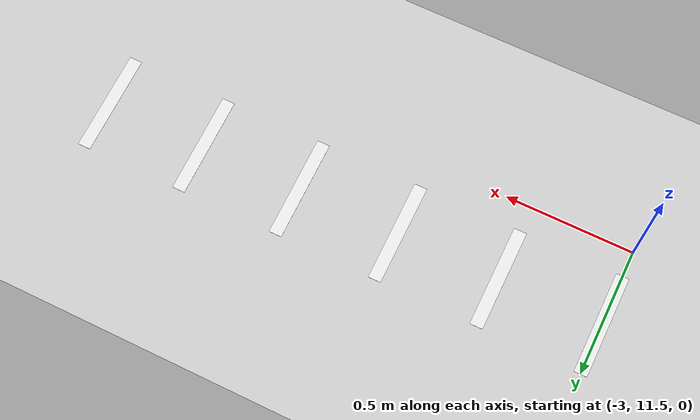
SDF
<sdf version="1.6">
 <world name="default">
  <model name="ground_plane">
   <static>1</static>
   <link name="link">
    <collision name="collision">
     <geometry><plane><normal>0 0 1</normal><size>100 100</size></plane></geometry>
     <surface><friction><ode><mu>100</mu><mu2>50</mu2></ode></friction></surface>
    </collision>
    <visual name="visual">
     <cast_shadows>0</cast_shadows>
     <geometry><plane><normal>0 0 1</normal><size>100 100</size></plane></geometry>
     <material>
      <script><uri>file://media/materials/scripts/gazebo.material</uri><name>Gazebo/Grey</name></script>
     </material>
    </visual>
   </link>
  </model>
  <model name="zebra_crossing_40cmx200cm_0">
   <link name="link_2">
    <inertial>
     <mass>1</mass>
     <inertia>
      <ixx>0.166667</ixx>
      <ixy>0</ixy>
      <ixz>0</ixz>
      <iyy>0.166667</iyy>
      <iyz>0</iyz>
      <izz>0.166667</izz>
     </inertia>
    </inertial>
    <visual name="ModelPreview_5::link_2::visual_1">
     <pose>-0.2 0 0 0 -0 0</pose>
     <geometry><box><size>0.05 0.4 0.001</size></box></geometry>
     <material>
      <lighting>1</lighting>
      <script><uri>file://media/materials/scripts/gazebo.material</uri><name>Gazebo/White</name></script>
     </material>
    </visual>
    <visual name="ModelPreview_5::link_2::visual_3">
     <pose>-0.6 0 0 0 -0 0</pose>
     <geometry><box><size>0.05 0.4 0.001</size></box></geometry>
     <material>
      <lighting>1</lighting>
      <script><uri>file://media/materials/scripts/gazebo.material</uri><name>Gazebo/White</name></script>
     </material>
    </visual>
    <visual name="ModelPreview_5::link_2::visual_4">
     <pose>1 0 0 0 -0 0</pose>
     <geometry><box><size>0.05 0.4 0.001</size></box></geometry>
     <material>
      <lighting>1</lighting>
      <script><uri>file://media/materials/scripts/gazebo.material</uri><name>Gazebo/White</name></script>
     </material>
    </visual>
    <visual name="visual">
     <pose>0.2 0 0 0 -0 0</pose>
     <geometry><box><size>0.05 0.4 0.001</size></box></geometry>
     <material>
      <lighting>1</lighting>
      <script><uri>file://media/materials/scripts/gazebo.material</uri><name>Gazebo/White</name></script>
     </material>
    </visual>
    <visual name="ModelPreview_5::link_2::visual_5">
     <pose>-1 0 0 0 -0 0</pose>
     <geometry><box><size>0.05 0.4 0.001</size></box></geometry>
     <material>
      <lighting>1</lighting>
      <script><uri>file://media/materials/scripts/gazebo.material</uri><name>Gazebo/White</name></script>
     </material>
    </visual>
    <visual name="ModelPreview_5::link_2::visual_2">
     <pose>0.6 0 0 0 -0 0</pose>
     <geometry><box><size>0.05 0.4 0.001</size></box></geometry>
     <material>
      <lighting>1</lighting>
      <script><uri>file://media/materials/scripts/gazebo.material</uri><name>Gazebo/White</name></script>
     </material>
    </visual>
    <collision name="collision_5">
     <pose>-1 0 0 0 -0 0</pose>
     <geometry><box><size>0.05 0.4 1e-05</size></box></geometry>
    </collision>
    <collision name="collision">
     <pose>0.2 0 0 0 -0 0</pose>
     <geometry><box><size>0.05 0.4 1e-05</size></box></geometry>
    </collision>
    <collision name="collision_3">
     <pose>-0.6 0 0 0 -0 0</pose>
     <geometry><box><size>0.05 0.4 1e-05</size></box></geometry>
    </collision>
    <collision name="collision_4">
     <pose>1 0 0 0 -0 0</pose>
     <geometry><box><size>0.05 0.4 1e-05</size></box></geometry>
    </collision>
    <collision name="collision_2">
     <pose>0.6 0 0 0 -0 0</pose>
     <geometry><box><size>0.05 0.4 1e-05</size></box></geometry>
    </collision>
    <collision name="collision_1">
     <pose>-0.2 0 0 0 -0 0</pose>
     <geometry><box><size>0.05 0.4 1e-05</size></box></geometry>
    </collision>
   </link>
   <static>1</static>
   <pose>-2 11.8 0 0 -0 0</pose>
  </model>
 </world>
</sdf>
